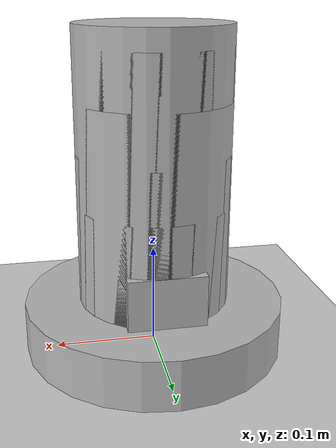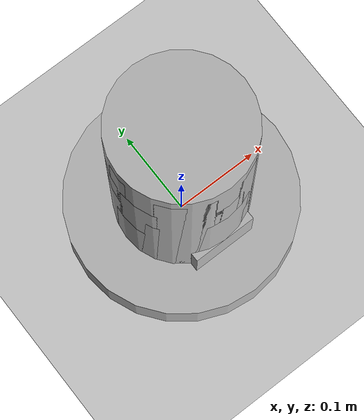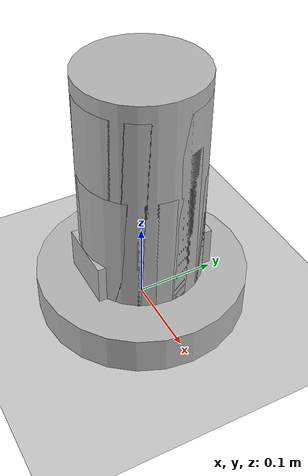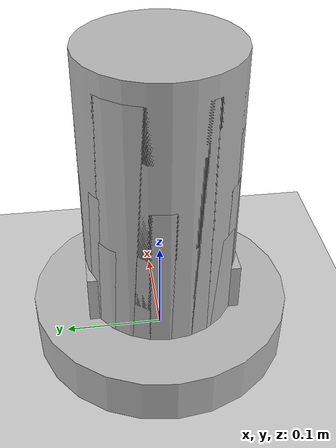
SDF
<?xml version="1.0" encoding="UTF-8"?>
<sdf version="1.8">
  <world name="empty">
    <physics name="default" type="ignored">
      <max_step_size>0.001</max_step_size>
      <real_time_factor>1.0</real_time_factor>
    </physics>

    <plugin filename="gz-sim-physics-system" name="gz::sim::systems::Physics"/>
    <plugin filename="gz-sim-user-commands-system" name="gz::sim::systems::UserCommands"/>
    <plugin filename="gz-sim-scene-broadcaster-system" name="gz::sim::systems::SceneBroadcaster"/>

    <light type="directional" name="sun">
      <cast_shadows>true</cast_shadows>
      <pose>0 0 10 0 0 0</pose>
      <diffuse>0.8 0.8 0.8 1</diffuse>
      <specular>0.2 0.2 0.2 1</specular>
      <direction>-0.5 0.1 -0.9</direction>
    </light>

    <model name="ground_plane">
      <static>true</static>
      <link name="link">
        <collision name="collision">
          <geometry>
            <plane>
              <normal>0 0 1</normal>
              <size>100 100</size>
            </plane>
          </geometry>
        </collision>
        <visual name="visual">
          <geometry>
            <plane>
              <normal>0 0 1</normal>
              <size>100 100</size>
            </plane>
          </geometry>
        </visual>
      </link>
    </model>

    <plugin filename="gz_ros2_control-system" name="gz_ros2_control::GazeboSimROS2ControlPlugin">

      <parameters>moveo_control.yaml</parameters>

    </plugin>

    <model name="moveo">
      <static>false</static>

      <link name="base_link">

        <inertial>
          <mass>25</mass>
          <inertia>
            <ixx>0.01</ixx><iyy>0.01</iyy><izz>0.01</izz>
            <ixy>0</ixy><ixz>0</ixz><iyz>0</iyz>
          </inertia>
        </inertial>

        <visual name="base_link_visual">

          <pose relative_to="base_link">0 0 0.025 0 0 0</pose>

          <geometry>

            <cylinder><radius>0.13</radius><length>0.05</length></cylinder>

          </geometry>
        </visual>
        <collision name="base_link_collision">
          <geometry>

            <cylinder><radius>0.13</radius><length>0.05</length></cylinder>

          </geometry>
        </collision>

      </link>

      <link name="link_0">

        <inertial>
          <mass>5</mass>
          <inertia>
            <ixx>0.01</ixx><iyy>0.01</iyy><izz>0.01</izz>
            <ixy>0</ixy><ixz>0</ixz><iyz>0</iyz>
          </inertia>
        </inertial>

        <visual name="link_0_visual">

          <pose relative_to="link_0">0 0 0.1 0 0 0</pose>

          <geometry>

            <cylinder><radius>0.075</radius><length>0.2</length></cylinder>

          </geometry>
        </visual>
        <collision name="link_0_collision">
          <geometry>

            <cylinder><radius>0.075</radius><length>0.2</length></cylinder>

          </geometry>
        </collision>

      </link>

      <link name="link_1">

        <inertial>
          <mass>2</mass>
          <inertia>
            <ixx>0.01</ixx><iyy>0.01</iyy><izz>0.01</izz>
            <ixy>0</ixy><ixz>0</ixz><iyz>0</iyz>
          </inertia>
        </inertial>

        <visual name="link_1_visual">

          <pose relative_to="link_1">0 0 0.15 0 0 0</pose>

          <geometry>

            <cylinder><radius>0.075</radius><length>0.3</length></cylinder>

          </geometry>
        </visual>
        <collision name="link_1_collision">
          <geometry>

            <cylinder><radius>0.075</radius><length>0.3</length></cylinder>

          </geometry>
        </collision>

      </link>

      <link name="link_2">

        <inertial>
          <mass>2</mass>
          <inertia>
            <ixx>0.01</ixx><iyy>0.01</iyy><izz>0.01</izz>
            <ixy>0</ixy><ixz>0</ixz><iyz>0</iyz>
          </inertia>
        </inertial>

        <visual name="link_2_visual">

          <pose relative_to="link_2">0 0 0.125 0 0 0</pose>

          <geometry>

            <cylinder><radius>0.075</radius><length>0.25</length></cylinder>

          </geometry>
        </visual>
        <collision name="link_2_collision">
          <geometry>

            <cylinder><radius>0.075</radius><length>0.25</length></cylinder>

          </geometry>
        </collision>

      </link>

      <link name="link_3">

        <inertial>
          <mass>2</mass>
          <inertia>
            <ixx>0.01</ixx><iyy>0.01</iyy><izz>0.01</izz>
            <ixy>0</ixy><ixz>0</ixz><iyz>0</iyz>
          </inertia>
        </inertial>

        <visual name="link_3_visual">

          <pose relative_to="link_3">0 0 0.16 0 0 0</pose>

          <geometry>

            <cylinder><radius>0.075</radius><length>0.32</length></cylinder>

          </geometry>
        </visual>
        <collision name="link_3_collision">
          <geometry>

            <cylinder><radius>0.075</radius><length>0.32</length></cylinder>

          </geometry>
        </collision>

      </link>

      <link name="link_4">

        <inertial>
          <mass>2</mass>
          <inertia>
            <ixx>0.01</ixx><iyy>0.01</iyy><izz>0.01</izz>
            <ixy>0</ixy><ixz>0</ixz><iyz>0</iyz>
          </inertia>
        </inertial>

        <visual name="link_4_visual">

          <pose relative_to="link_4">0 0 0.075 0 0 0</pose>

          <geometry>

            <cylinder><radius>0.075</radius><length>0.15</length></cylinder>

          </geometry>
        </visual>
        <collision name="link_4_collision">
          <geometry>

            <cylinder><radius>0.075</radius><length>0.15</length></cylinder>

          </geometry>
        </collision>

      </link>

      <link name="tool">

        <inertial>
          <mass>0.5</mass>
          <inertia>
            <ixx>0.01</ixx><iyy>0.01</iyy><izz>0.01</izz>
            <ixy>0</ixy><ixz>0</ixz><iyz>0</iyz>
          </inertia>
        </inertial>

        <visual name="tool_visual">

          <pose relative_to="tool">0 0 0.05 0 0 0</pose>

          <geometry>

            <box><size>0.075 0.15 0.1</size></box>

          </geometry>
        </visual>
        <collision name="tool_collision">
          <geometry>

            <box><size>0.075 0.15 0.1</size></box>

          </geometry>
        </collision>

      </link>

      <joint name="j_fix" type="fixed">
        <parent>world</parent>
        <child>base_link</child>
      </joint>

      <joint name="j0" type="revolute">
        <parent>base_link</parent>
        <child>link_0</child>
        <axis>
          <xyz>0 0 1</xyz>
        </axis>
      </joint>

      <joint name="j1" type="revolute">
        <parent>link_0</parent>
        <child>link_1</child>
        <axis>
          <xyz>0 0 1</xyz>
        </axis>
      </joint>

      <joint name="j2" type="revolute">
        <parent>link_1</parent>
        <child>link_2</child>
        <axis>
          <xyz>0 0 1</xyz>
        </axis>
      </joint>

      <joint name="j3" type="revolute">
        <parent>link_2</parent>
        <child>link_3</child>
        <axis>
          <xyz>0 0 1</xyz>
        </axis>
      </joint>

      <joint name="j4" type="revolute">
        <parent>link_3</parent>
        <child>link_4</child>
        <axis>
          <xyz>0 0 1</xyz>
        </axis>
      </joint>

      <joint name="jtool" type="revolute">
        <parent>link_4</parent>
        <child>tool</child>
        <axis>
          <xyz>0 0 1</xyz>
        </axis>
      </joint>

      <plugin filename="gz_ros2_control-system" name="gz_ros2_control/GazeboSimSystem">
      </plugin>

    </model>
  </world>
</sdf>
